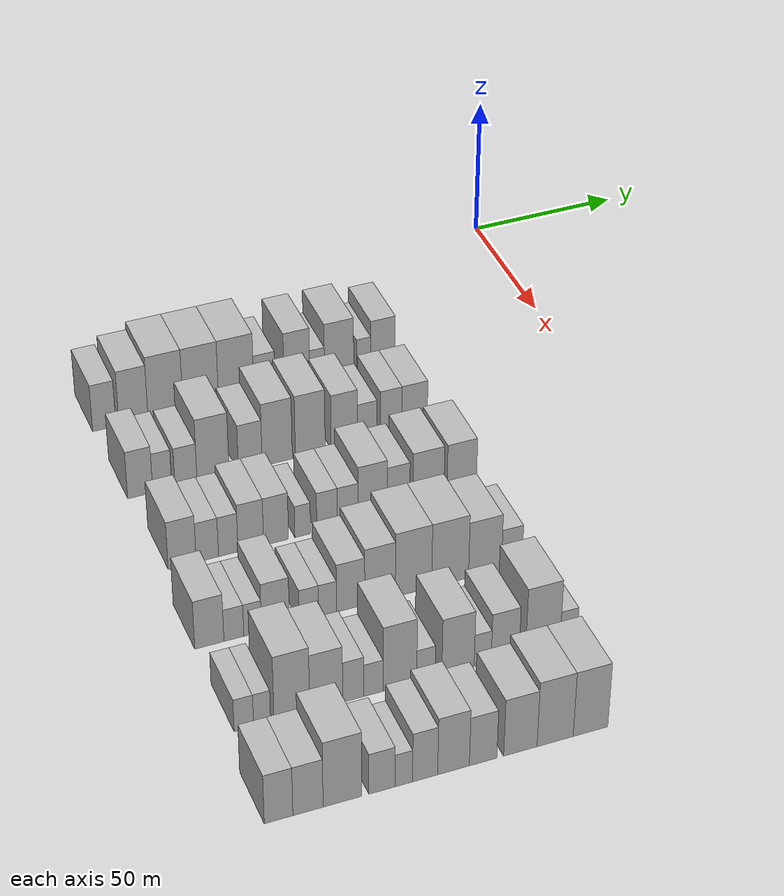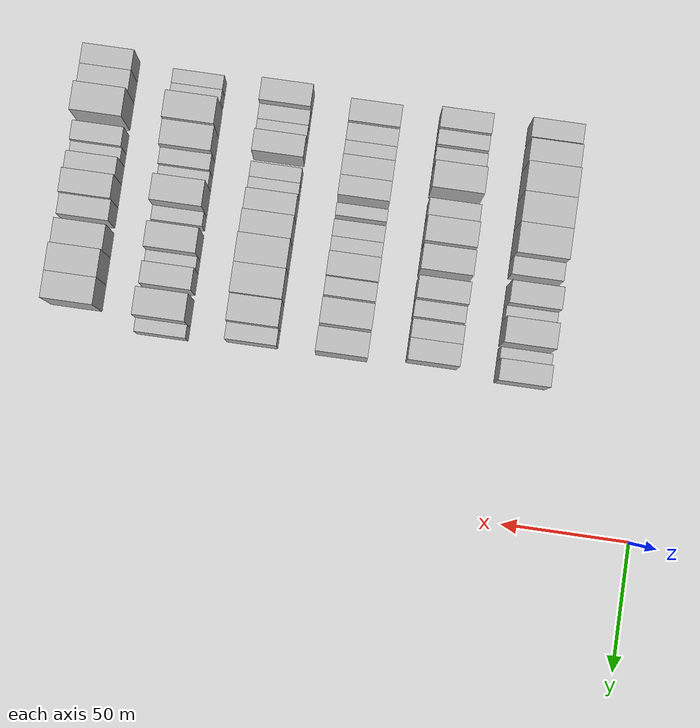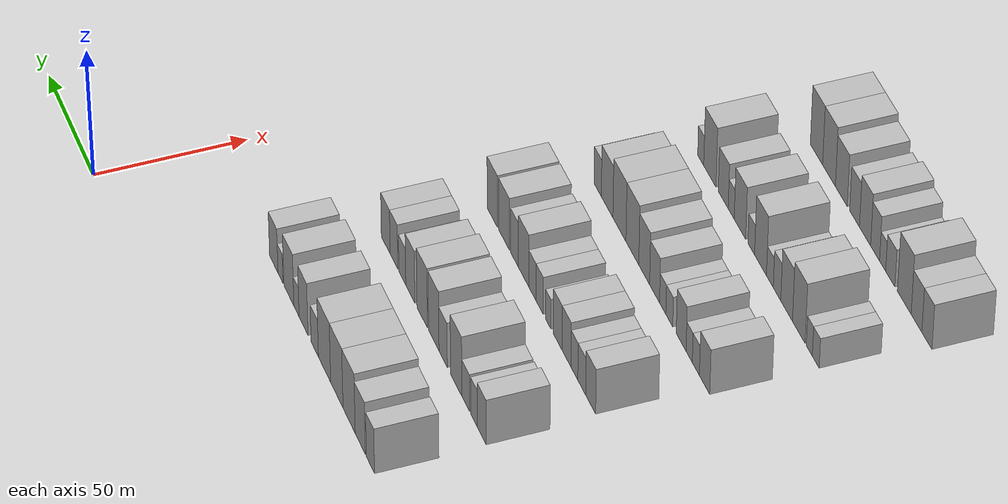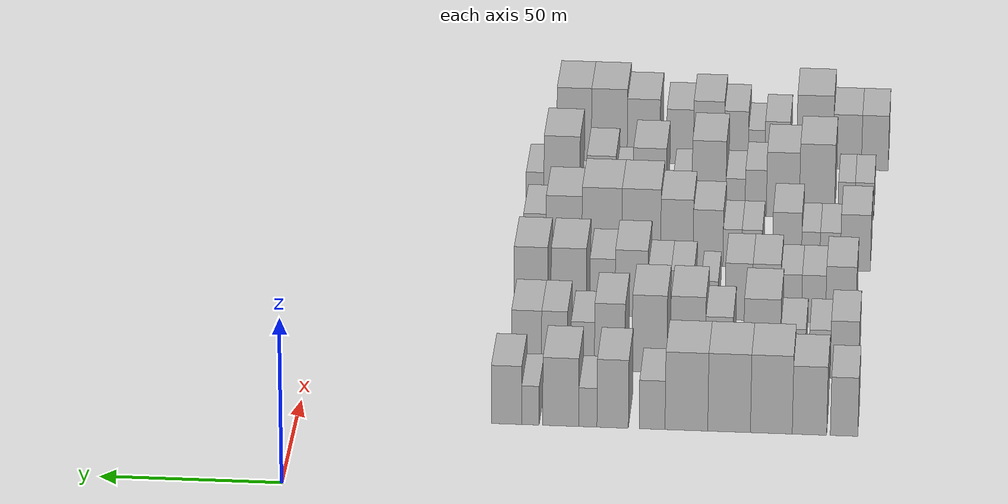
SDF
<sdf version="1.6">
 <world name="default">
  <model name="building_47">
   <static>1</static>
   <pose>50.0000 -151.7226 0 0.000000 0.000000 0.000000</pose>
   <link name="link">
    <pose>0 0 9.00 0 0 0</pose>
    <collision name="collision"><geometry><box><size>20.0000 7.5918 18.0000</size></box></geometry></collision>
    <visual name="visual">
     <cast_shadows>0</cast_shadows>
     <geometry><box><size>20.0000 7.5918 18.0000</size></box></geometry>
     <material>
      <script>
       <uri>model://HANNAS_wall/materials/scripts</uri>
       <uri>model://HANNAS_wall/materials/textures</uri>
       <name>vrc/HANNAS_wall</name>
      </script>
     </material>
    </visual>
   </link>
  </model>
  <model name="building_48">
   <static>1</static>
   <pose>50.0000 -142.1726 0 0.000000 0.000000 0.000000</pose>
   <link name="link">
    <pose>0 0 10.50 0 0 0</pose>
    <collision name="collision"><geometry><box><size>20.0000 9.5083 21.0000</size></box></geometry></collision>
    <visual name="visual">
     <cast_shadows>0</cast_shadows>
     <geometry><box><size>20.0000 9.5083 21.0000</size></box></geometry>
     <material>
      <script>
       <uri>model://HANNAS_wall/materials/scripts</uri>
       <uri>model://HANNAS_wall/materials/textures</uri>
       <name>vrc/HANNAS_wall</name>
      </script>
     </material>
    </visual>
   </link>
  </model>
  <model name="building_49">
   <static>1</static>
   <pose>50.0000 -131.6362 0 0.000000 0.000000 0.000000</pose>
   <link name="link">
    <pose>0 0 12.00 0 0 0</pose>
    <collision name="collision"><geometry><box><size>20.0000 11.5646 24.0000</size></box></geometry></collision>
    <visual name="visual">
     <cast_shadows>0</cast_shadows>
     <geometry><box><size>20.0000 11.5646 24.0000</size></box></geometry>
     <material>
      <script>
       <uri>model://HANNAS_wall/materials/scripts</uri>
       <uri>model://HANNAS_wall/materials/textures</uri>
       <name>vrc/HANNAS_wall</name>
      </script>
     </material>
    </visual>
   </link>
  </model>
  <model name="building_50">
   <static>1</static>
   <pose>50.0000 -119.9481 0 0.000000 0.000000 0.000000</pose>
   <link name="link">
    <pose>0 0 12.00 0 0 0</pose>
    <collision name="collision"><geometry><box><size>20.0000 11.8115 24.0000</size></box></geometry></collision>
    <visual name="visual">
     <cast_shadows>0</cast_shadows>
     <geometry><box><size>20.0000 11.8115 24.0000</size></box></geometry>
     <material>
      <script>
       <uri>model://HANNAS_wall/materials/scripts</uri>
       <uri>model://HANNAS_wall/materials/textures</uri>
       <name>vrc/HANNAS_wall</name>
      </script>
     </material>
    </visual>
   </link>
  </model>
  <model name="building_51">
   <static>1</static>
   <pose>50.0000 -108.1236 0 0.000000 0.000000 0.000000</pose>
   <link name="link">
    <pose>0 0 12.00 0 0 0</pose>
    <collision name="collision"><geometry><box><size>20.0000 11.8376 24.0000</size></box></geometry></collision>
    <visual name="visual">
     <cast_shadows>0</cast_shadows>
     <geometry><box><size>20.0000 11.8376 24.0000</size></box></geometry>
     <material>
      <script>
       <uri>model://HANNAS_wall/materials/scripts</uri>
       <uri>model://HANNAS_wall/materials/textures</uri>
       <name>vrc/HANNAS_wall</name>
      </script>
     </material>
    </visual>
   </link>
  </model>
  <model name="building_52">
   <static>1</static>
   <pose>50.0000 -98.6287 0 0.000000 0.000000 0.000000</pose>
   <link name="link">
    <pose>0 0 7.50 0 0 0</pose>
    <collision name="collision"><geometry><box><size>20.0000 7.1521 15.0000</size></box></geometry></collision>
    <visual name="visual">
     <cast_shadows>0</cast_shadows>
     <geometry><box><size>20.0000 7.1521 15.0000</size></box></geometry>
     <material>
      <script>
       <uri>model://HANNAS_wall/materials/scripts</uri>
       <uri>model://HANNAS_wall/materials/textures</uri>
       <name>vrc/HANNAS_wall</name>
      </script>
     </material>
    </visual>
   </link>
  </model>
  <model name="building_53">
   <static>1</static>
   <pose>50.0000 -87.6886 0 0.000000 0.000000 0.000000</pose>
   <link name="link">
    <pose>0 0 10.50 0 0 0</pose>
    <collision name="collision"><geometry><box><size>20.0000 8.7281 21.0000</size></box></geometry></collision>
    <visual name="visual">
     <cast_shadows>0</cast_shadows>
     <geometry><box><size>20.0000 8.7281 21.0000</size></box></geometry>
     <material>
      <script>
       <uri>model://HANNAS_wall/materials/scripts</uri>
       <uri>model://HANNAS_wall/materials/textures</uri>
       <name>vrc/HANNAS_wall</name>
      </script>
     </material>
    </visual>
   </link>
  </model>
  <model name="building_54">
   <static>1</static>
   <pose>50.0000 -80.7984 0 0.000000 0.000000 0.000000</pose>
   <link name="link">
    <pose>0 0 6.00 0 0 0</pose>
    <collision name="collision"><geometry><box><size>20.0000 5.0522 12.0000</size></box></geometry></collision>
    <visual name="visual">
     <cast_shadows>0</cast_shadows>
     <geometry><box><size>20.0000 5.0522 12.0000</size></box></geometry>
     <material>
      <script>
       <uri>model://HANNAS_wall/materials/scripts</uri>
       <uri>model://HANNAS_wall/materials/textures</uri>
       <name>vrc/HANNAS_wall</name>
      </script>
     </material>
    </visual>
   </link>
  </model>
  <model name="building_55">
   <static>1</static>
   <pose>50.0000 -73.2780 0 0.000000 0.000000 0.000000</pose>
   <link name="link">
    <pose>0 0 10.50 0 0 0</pose>
    <collision name="collision"><geometry><box><size>20.0000 9.9886 21.0000</size></box></geometry></collision>
    <visual name="visual">
     <cast_shadows>0</cast_shadows>
     <geometry><box><size>20.0000 9.9886 21.0000</size></box></geometry>
     <material>
      <script>
       <uri>model://HANNAS_wall/materials/scripts</uri>
       <uri>model://HANNAS_wall/materials/textures</uri>
       <name>vrc/HANNAS_wall</name>
      </script>
     </material>
    </visual>
   </link>
  </model>
  <model name="building_56">
   <static>1</static>
   <pose>50.0000 -64.8513 0 0.000000 0.000000 0.000000</pose>
   <link name="link">
    <pose>0 0 6.00 0 0 0</pose>
    <collision name="collision"><geometry><box><size>20.0000 4.8649 12.0000</size></box></geometry></collision>
    <visual name="visual">
     <cast_shadows>0</cast_shadows>
     <geometry><box><size>20.0000 4.8649 12.0000</size></box></geometry>
     <material>
      <script>
       <uri>model://HANNAS_wall/materials/scripts</uri>
       <uri>model://HANNAS_wall/materials/textures</uri>
       <name>vrc/HANNAS_wall</name>
      </script>
     </material>
    </visual>
   </link>
  </model>
  <model name="building_57">
   <static>1</static>
   <pose>50.0000 -58.1973 0 0.000000 0.000000 0.000000</pose>
   <link name="link">
    <pose>0 0 9.00 0 0 0</pose>
    <collision name="collision"><geometry><box><size>20.0000 8.4430 18.0000</size></box></geometry></collision>
    <visual name="visual">
     <cast_shadows>0</cast_shadows>
     <geometry><box><size>20.0000 8.4430 18.0000</size></box></geometry>
     <material>
      <script>
       <uri>model://HANNAS_wall/materials/scripts</uri>
       <uri>model://HANNAS_wall/materials/textures</uri>
       <name>vrc/HANNAS_wall</name>
      </script>
     </material>
    </visual>
   </link>
  </model>
  <model name="building_180">
   <static>1</static>
   <pose>85.0000 -150.8026 0 0.000000 0.000000 0.000000</pose>
   <link name="link">
    <pose>0 0 9.00 0 0 0</pose>
    <collision name="collision"><geometry><box><size>20.0000 7.9804 18.0000</size></box></geometry></collision>
    <visual name="visual">
     <cast_shadows>0</cast_shadows>
     <geometry><box><size>20.0000 7.9804 18.0000</size></box></geometry>
     <material>
      <script>
       <uri>model://HANNAS_wall/materials/scripts</uri>
       <uri>model://HANNAS_wall/materials/textures</uri>
       <name>vrc/HANNAS_wall</name>
      </script>
     </material>
    </visual>
   </link>
  </model>
  <model name="building_181">
   <static>1</static>
   <pose>85.0000 -143.7835 0 0.000000 0.000000 0.000000</pose>
   <link name="link">
    <pose>0 0 7.50 0 0 0</pose>
    <collision name="collision"><geometry><box><size>20.0000 6.0578 15.0000</size></box></geometry></collision>
    <visual name="visual">
     <cast_shadows>0</cast_shadows>
     <geometry><box><size>20.0000 6.0578 15.0000</size></box></geometry>
     <material>
      <script>
       <uri>model://HANNAS_wall/materials/scripts</uri>
       <uri>model://HANNAS_wall/materials/textures</uri>
       <name>vrc/HANNAS_wall</name>
      </script>
     </material>
    </visual>
   </link>
  </model>
  <model name="building_182">
   <static>1</static>
   <pose>85.0000 -136.2201 0 0.000000 0.000000 0.000000</pose>
   <link name="link">
    <pose>0 0 7.50 0 0 0</pose>
    <collision name="collision"><geometry><box><size>20.0000 7.0689 15.0000</size></box></geometry></collision>
    <visual name="visual">
     <cast_shadows>0</cast_shadows>
     <geometry><box><size>20.0000 7.0689 15.0000</size></box></geometry>
     <material>
      <script>
       <uri>model://HANNAS_wall/materials/scripts</uri>
       <uri>model://HANNAS_wall/materials/textures</uri>
       <name>vrc/HANNAS_wall</name>
      </script>
     </material>
    </visual>
   </link>
  </model>
  <model name="building_183">
   <static>1</static>
   <pose>85.0000 -127.5166 0 0.000000 0.000000 0.000000</pose>
   <link name="link">
    <pose>0 0 12.00 0 0 0</pose>
    <collision name="collision"><geometry><box><size>20.0000 10.3381 24.0000</size></box></geometry></collision>
    <visual name="visual">
     <cast_shadows>0</cast_shadows>
     <geometry><box><size>20.0000 10.3381 24.0000</size></box></geometry>
     <material>
      <script>
       <uri>model://HANNAS_wall/materials/scripts</uri>
       <uri>model://HANNAS_wall/materials/textures</uri>
       <name>vrc/HANNAS_wall</name>
      </script>
     </material>
    </visual>
   </link>
  </model>
  <model name="building_184">
   <static>1</static>
   <pose>85.0000 -115.4911 0 0.000000 0.000000 0.000000</pose>
   <link name="link">
    <pose>0 0 9.00 0 0 0</pose>
    <collision name="collision"><geometry><box><size>20.0000 7.7129 18.0000</size></box></geometry></collision>
    <visual name="visual">
     <cast_shadows>0</cast_shadows>
     <geometry><box><size>20.0000 7.7129 18.0000</size></box></geometry>
     <material>
      <script>
       <uri>model://HANNAS_wall/materials/scripts</uri>
       <uri>model://HANNAS_wall/materials/textures</uri>
       <name>vrc/HANNAS_wall</name>
      </script>
     </material>
    </visual>
   </link>
  </model>
  <model name="building_185">
   <static>1</static>
   <pose>85.0000 -106.7195 0 0.000000 0.000000 0.000000</pose>
   <link name="link">
    <pose>0 0 12.00 0 0 0</pose>
    <collision name="collision"><geometry><box><size>20.0000 9.8304 24.0000</size></box></geometry></collision>
    <visual name="visual">
     <cast_shadows>0</cast_shadows>
     <geometry><box><size>20.0000 9.8304 24.0000</size></box></geometry>
     <material>
      <script>
       <uri>model://HANNAS_wall/materials/scripts</uri>
       <uri>model://HANNAS_wall/materials/textures</uri>
       <name>vrc/HANNAS_wall</name>
      </script>
     </material>
    </visual>
   </link>
  </model>
  <model name="building_186">
   <static>1</static>
   <pose>85.0000 -95.9043 0 0.000000 0.000000 0.000000</pose>
   <link name="link">
    <pose>0 0 12.00 0 0 0</pose>
    <collision name="collision"><geometry><box><size>20.0000 9.8000 24.0000</size></box></geometry></collision>
    <visual name="visual">
     <cast_shadows>0</cast_shadows>
     <geometry><box><size>20.0000 9.8000 24.0000</size></box></geometry>
     <material>
      <script>
       <uri>model://HANNAS_wall/materials/scripts</uri>
       <uri>model://HANNAS_wall/materials/textures</uri>
       <name>vrc/HANNAS_wall</name>
      </script>
     </material>
    </visual>
   </link>
  </model>
  <model name="building_187">
   <static>1</static>
   <pose>85.0000 -84.6917 0 0.000000 0.000000 0.000000</pose>
   <link name="link">
    <pose>0 0 10.50 0 0 0</pose>
    <collision name="collision"><geometry><box><size>20.0000 8.6253 21.0000</size></box></geometry></collision>
    <visual name="visual">
     <cast_shadows>0</cast_shadows>
     <geometry><box><size>20.0000 8.6253 21.0000</size></box></geometry>
     <material>
      <script>
       <uri>model://HANNAS_wall/materials/scripts</uri>
       <uri>model://HANNAS_wall/materials/textures</uri>
       <name>vrc/HANNAS_wall</name>
      </script>
     </material>
    </visual>
   </link>
  </model>
  <model name="building_188">
   <static>1</static>
   <pose>85.0000 -77.0726 0 0.000000 0.000000 0.000000</pose>
   <link name="link">
    <pose>0 0 7.50 0 0 0</pose>
    <collision name="collision"><geometry><box><size>20.0000 6.6129 15.0000</size></box></geometry></collision>
    <visual name="visual">
     <cast_shadows>0</cast_shadows>
     <geometry><box><size>20.0000 6.6129 15.0000</size></box></geometry>
     <material>
      <script>
       <uri>model://HANNAS_wall/materials/scripts</uri>
       <uri>model://HANNAS_wall/materials/textures</uri>
       <name>vrc/HANNAS_wall</name>
      </script>
     </material>
    </visual>
   </link>
  </model>
  <model name="building_189">
   <static>1</static>
   <pose>85.0000 -69.1097 0 0.000000 0.000000 0.000000</pose>
   <link name="link">
    <pose>0 0 9.00 0 0 0</pose>
    <collision name="collision"><geometry><box><size>20.0000 7.3129 18.0000</size></box></geometry></collision>
    <visual name="visual">
     <cast_shadows>0</cast_shadows>
     <geometry><box><size>20.0000 7.3129 18.0000</size></box></geometry>
     <material>
      <script>
       <uri>model://HANNAS_wall/materials/scripts</uri>
       <uri>model://HANNAS_wall/materials/textures</uri>
       <name>vrc/HANNAS_wall</name>
      </script>
     </material>
    </visual>
   </link>
  </model>
  <model name="building_190">
   <static>1</static>
   <pose>85.0000 -61.2022 0 0.000000 0.000000 0.000000</pose>
   <link name="link">
    <pose>0 0 9.00 0 0 0</pose>
    <collision name="collision"><geometry><box><size>20.0000 8.5022 18.0000</size></box></geometry></collision>
    <visual name="visual">
     <cast_shadows>0</cast_shadows>
     <geometry><box><size>20.0000 8.5022 18.0000</size></box></geometry>
     <material>
      <script>
       <uri>model://HANNAS_wall/materials/scripts</uri>
       <uri>model://HANNAS_wall/materials/textures</uri>
       <name>vrc/HANNAS_wall</name>
      </script>
     </material>
    </visual>
   </link>
  </model>
  <model name="building_313">
   <static>1</static>
   <pose>120.0000 -148.7466 0 0.000000 0.000000 0.000000</pose>
   <link name="link">
    <pose>0 0 9.00 0 0 0</pose>
    <collision name="collision"><geometry><box><size>20.0000 8.6622 18.0000</size></box></geometry></collision>
    <visual name="visual">
     <cast_shadows>0</cast_shadows>
     <geometry><box><size>20.0000 8.6622 18.0000</size></box></geometry>
     <material>
      <script>
       <uri>model://HANNAS_wall/materials/scripts</uri>
       <uri>model://HANNAS_wall/materials/textures</uri>
       <name>vrc/HANNAS_wall</name>
      </script>
     </material>
    </visual>
   </link>
  </model>
  <model name="building_314">
   <static>1</static>
   <pose>120.0000 -140.9624 0 0.000000 0.000000 0.000000</pose>
   <link name="link">
    <pose>0 0 7.50 0 0 0</pose>
    <collision name="collision"><geometry><box><size>20.0000 6.9063 15.0000</size></box></geometry></collision>
    <visual name="visual">
     <cast_shadows>0</cast_shadows>
     <geometry><box><size>20.0000 6.9063 15.0000</size></box></geometry>
     <material>
      <script>
       <uri>model://HANNAS_wall/materials/scripts</uri>
       <uri>model://HANNAS_wall/materials/textures</uri>
       <name>vrc/HANNAS_wall</name>
      </script>
     </material>
    </visual>
   </link>
  </model>
  <model name="building_315">
   <static>1</static>
   <pose>120.0000 -134.4715 0 0.000000 0.000000 0.000000</pose>
   <link name="link">
    <pose>0 0 7.50 0 0 0</pose>
    <collision name="collision"><geometry><box><size>20.0000 6.0755 15.0000</size></box></geometry></collision>
    <visual name="visual">
     <cast_shadows>0</cast_shadows>
     <geometry><box><size>20.0000 6.0755 15.0000</size></box></geometry>
     <material>
      <script>
       <uri>model://HANNAS_wall/materials/scripts</uri>
       <uri>model://HANNAS_wall/materials/textures</uri>
       <name>vrc/HANNAS_wall</name>
      </script>
     </material>
    </visual>
   </link>
  </model>
  <model name="building_316">
   <static>1</static>
   <pose>120.0000 -127.4224 0 0.000000 0.000000 0.000000</pose>
   <link name="link">
    <pose>0 0 9.00 0 0 0</pose>
    <collision name="collision"><geometry><box><size>20.0000 8.0227 18.0000</size></box></geometry></collision>
    <visual name="visual">
     <cast_shadows>0</cast_shadows>
     <geometry><box><size>20.0000 8.0227 18.0000</size></box></geometry>
     <material>
      <script>
       <uri>model://HANNAS_wall/materials/scripts</uri>
       <uri>model://HANNAS_wall/materials/textures</uri>
       <name>vrc/HANNAS_wall</name>
      </script>
     </material>
    </visual>
   </link>
  </model>
  <model name="building_317">
   <static>1</static>
   <pose>120.0000 -119.4923 0 0.000000 0.000000 0.000000</pose>
   <link name="link">
    <pose>0 0 9.00 0 0 0</pose>
    <collision name="collision"><geometry><box><size>20.0000 7.8375 18.0000</size></box></geometry></collision>
    <visual name="visual">
     <cast_shadows>0</cast_shadows>
     <geometry><box><size>20.0000 7.8375 18.0000</size></box></geometry>
     <material>
      <script>
       <uri>model://HANNAS_wall/materials/scripts</uri>
       <uri>model://HANNAS_wall/materials/textures</uri>
       <name>vrc/HANNAS_wall</name>
      </script>
     </material>
    </visual>
   </link>
  </model>
  <model name="building_318">
   <static>1</static>
   <pose>120.0000 -111.0897 0 0.000000 0.000000 0.000000</pose>
   <link name="link">
    <pose>0 0 6.00 0 0 0</pose>
    <collision name="collision"><geometry><box><size>20.0000 4.9676 12.0000</size></box></geometry></collision>
    <visual name="visual">
     <cast_shadows>0</cast_shadows>
     <geometry><box><size>20.0000 4.9676 12.0000</size></box></geometry>
     <material>
      <script>
       <uri>model://HANNAS_wall/materials/scripts</uri>
       <uri>model://HANNAS_wall/materials/textures</uri>
       <name>vrc/HANNAS_wall</name>
      </script>
     </material>
    </visual>
   </link>
  </model>
  <model name="building_319">
   <static>1</static>
   <pose>120.0000 -103.3149 0 0.000000 0.000000 0.000000</pose>
   <link name="link">
    <pose>0 0 7.50 0 0 0</pose>
    <collision name="collision"><geometry><box><size>20.0000 6.5821 15.0000</size></box></geometry></collision>
    <visual name="visual">
     <cast_shadows>0</cast_shadows>
     <geometry><box><size>20.0000 6.5821 15.0000</size></box></geometry>
     <material>
      <script>
       <uri>model://HANNAS_wall/materials/scripts</uri>
       <uri>model://HANNAS_wall/materials/textures</uri>
       <name>vrc/HANNAS_wall</name>
      </script>
     </material>
    </visual>
   </link>
  </model>
  <model name="building_320">
   <static>1</static>
   <pose>120.0000 -96.7387 0 0.000000 0.000000 0.000000</pose>
   <link name="link">
    <pose>0 0 7.50 0 0 0</pose>
    <collision name="collision"><geometry><box><size>20.0000 6.5704 15.0000</size></box></geometry></collision>
    <visual name="visual">
     <cast_shadows>0</cast_shadows>
     <geometry><box><size>20.0000 6.5704 15.0000</size></box></geometry>
     <material>
      <script>
       <uri>model://HANNAS_wall/materials/scripts</uri>
       <uri>model://HANNAS_wall/materials/textures</uri>
       <name>vrc/HANNAS_wall</name>
      </script>
     </material>
    </visual>
   </link>
  </model>
  <model name="building_321">
   <static>1</static>
   <pose>120.0000 -88.7638 0 0.000000 0.000000 0.000000</pose>
   <link name="link">
    <pose>0 0 10.50 0 0 0</pose>
    <collision name="collision"><geometry><box><size>20.0000 9.3794 21.0000</size></box></geometry></collision>
    <visual name="visual">
     <cast_shadows>0</cast_shadows>
     <geometry><box><size>20.0000 9.3794 21.0000</size></box></geometry>
     <material>
      <script>
       <uri>model://HANNAS_wall/materials/scripts</uri>
       <uri>model://HANNAS_wall/materials/textures</uri>
       <name>vrc/HANNAS_wall</name>
      </script>
     </material>
    </visual>
   </link>
  </model>
  <model name="building_322">
   <static>1</static>
   <pose>120.0000 -80.4384 0 0.000000 0.000000 0.000000</pose>
   <link name="link">
    <pose>0 0 9.00 0 0 0</pose>
    <collision name="collision"><geometry><box><size>20.0000 7.2715 18.0000</size></box></geometry></collision>
    <visual name="visual">
     <cast_shadows>0</cast_shadows>
     <geometry><box><size>20.0000 7.2715 18.0000</size></box></geometry>
     <material>
      <script>
       <uri>model://HANNAS_wall/materials/scripts</uri>
       <uri>model://HANNAS_wall/materials/textures</uri>
       <name>vrc/HANNAS_wall</name>
      </script>
     </material>
    </visual>
   </link>
  </model>
  <model name="building_323">
   <static>1</static>
   <pose>120.0000 -70.7471 0 0.000000 0.000000 0.000000</pose>
   <link name="link">
    <pose>0 0 10.50 0 0 0</pose>
    <collision name="collision"><geometry><box><size>20.0000 10.1110 21.0000</size></box></geometry></collision>
    <visual name="visual">
     <cast_shadows>0</cast_shadows>
     <geometry><box><size>20.0000 10.1110 21.0000</size></box></geometry>
     <material>
      <script>
       <uri>model://HANNAS_wall/materials/scripts</uri>
       <uri>model://HANNAS_wall/materials/textures</uri>
       <name>vrc/HANNAS_wall</name>
      </script>
     </material>
    </visual>
   </link>
  </model>
  <model name="building_324">
   <static>1</static>
   <pose>120.0000 -59.8851 0 0.000000 0.000000 0.000000</pose>
   <link name="link">
    <pose>0 0 10.50 0 0 0</pose>
    <collision name="collision"><geometry><box><size>20.0000 9.6130 21.0000</size></box></geometry></collision>
    <visual name="visual">
     <cast_shadows>0</cast_shadows>
     <geometry><box><size>20.0000 9.6130 21.0000</size></box></geometry>
     <material>
      <script>
       <uri>model://HANNAS_wall/materials/scripts</uri>
       <uri>model://HANNAS_wall/materials/textures</uri>
       <name>vrc/HANNAS_wall</name>
      </script>
     </material>
    </visual>
   </link>
  </model>
  <model name="building_440">
   <static>1</static>
   <pose>155.0000 -151.9660 0 0.000000 0.000000 0.000000</pose>
   <link name="link">
    <pose>0 0 9.00 0 0 0</pose>
    <collision name="collision"><geometry><box><size>20.0000 8.7335 18.0000</size></box></geometry></collision>
    <visual name="visual">
     <cast_shadows>0</cast_shadows>
     <geometry><box><size>20.0000 8.7335 18.0000</size></box></geometry>
     <material>
      <script>
       <uri>model://HANNAS_wall/materials/scripts</uri>
       <uri>model://HANNAS_wall/materials/textures</uri>
       <name>vrc/HANNAS_wall</name>
      </script>
     </material>
    </visual>
   </link>
  </model>
  <model name="building_441">
   <static>1</static>
   <pose>155.0000 -144.6130 0 0.000000 0.000000 0.000000</pose>
   <link name="link">
    <pose>0 0 6.00 0 0 0</pose>
    <collision name="collision"><geometry><box><size>20.0000 5.9723 12.0000</size></box></geometry></collision>
    <visual name="visual">
     <cast_shadows>0</cast_shadows>
     <geometry><box><size>20.0000 5.9723 12.0000</size></box></geometry>
     <material>
      <script>
       <uri>model://HANNAS_wall/materials/scripts</uri>
       <uri>model://HANNAS_wall/materials/textures</uri>
       <name>vrc/HANNAS_wall</name>
      </script>
     </material>
    </visual>
   </link>
  </model>
  <model name="building_442">
   <static>1</static>
   <pose>155.0000 -138.9491 0 0.000000 0.000000 0.000000</pose>
   <link name="link">
    <pose>0 0 6.00 0 0 0</pose>
    <collision name="collision"><geometry><box><size>20.0000 5.3557 12.0000</size></box></geometry></collision>
    <visual name="visual">
     <cast_shadows>0</cast_shadows>
     <geometry><box><size>20.0000 5.3557 12.0000</size></box></geometry>
     <material>
      <script>
       <uri>model://HANNAS_wall/materials/scripts</uri>
       <uri>model://HANNAS_wall/materials/textures</uri>
       <name>vrc/HANNAS_wall</name>
      </script>
     </material>
    </visual>
   </link>
  </model>
  <model name="building_443">
   <static>1</static>
   <pose>155.0000 -132.0461 0 0.000000 0.000000 0.000000</pose>
   <link name="link">
    <pose>0 0 9.00 0 0 0</pose>
    <collision name="collision"><geometry><box><size>20.0000 8.4503 18.0000</size></box></geometry></collision>
    <visual name="visual">
     <cast_shadows>0</cast_shadows>
     <geometry><box><size>20.0000 8.4503 18.0000</size></box></geometry>
     <material>
      <script>
       <uri>model://HANNAS_wall/materials/scripts</uri>
       <uri>model://HANNAS_wall/materials/textures</uri>
       <name>vrc/HANNAS_wall</name>
      </script>
     </material>
    </visual>
   </link>
  </model>
  <model name="building_444">
   <static>1</static>
   <pose>155.0000 -121.8420 0 0.000000 0.000000 0.000000</pose>
   <link name="link">
    <pose>0 0 6.00 0 0 0</pose>
    <collision name="collision"><geometry><box><size>20.0000 5.9577 12.0000</size></box></geometry></collision>
    <visual name="visual">
     <cast_shadows>0</cast_shadows>
     <geometry><box><size>20.0000 5.9577 12.0000</size></box></geometry>
     <material>
      <script>
       <uri>model://HANNAS_wall/materials/scripts</uri>
       <uri>model://HANNAS_wall/materials/textures</uri>
       <name>vrc/HANNAS_wall</name>
      </script>
     </material>
    </visual>
   </link>
  </model>
  <model name="building_445">
   <static>1</static>
   <pose>155.0000 -116.1444 0 0.000000 0.000000 0.000000</pose>
   <link name="link">
    <pose>0 0 6.00 0 0 0</pose>
    <collision name="collision"><geometry><box><size>20.0000 5.4375 12.0000</size></box></geometry></collision>
    <visual name="visual">
     <cast_shadows>0</cast_shadows>
     <geometry><box><size>20.0000 5.4375 12.0000</size></box></geometry>
     <material>
      <script>
       <uri>model://HANNAS_wall/materials/scripts</uri>
       <uri>model://HANNAS_wall/materials/textures</uri>
       <name>vrc/HANNAS_wall</name>
      </script>
     </material>
    </visual>
   </link>
  </model>
  <model name="building_446">
   <static>1</static>
   <pose>155.0000 -109.0697 0 0.000000 0.000000 0.000000</pose>
   <link name="link">
    <pose>0 0 9.00 0 0 0</pose>
    <collision name="collision"><geometry><box><size>20.0000 8.7119 18.0000</size></box></geometry></collision>
    <visual name="visual">
     <cast_shadows>0</cast_shadows>
     <geometry><box><size>20.0000 8.7119 18.0000</size></box></geometry>
     <material>
      <script>
       <uri>model://HANNAS_wall/materials/scripts</uri>
       <uri>model://HANNAS_wall/materials/textures</uri>
       <name>vrc/HANNAS_wall</name>
      </script>
     </material>
    </visual>
   </link>
  </model>
  <model name="building_447">
   <static>1</static>
   <pose>155.0000 -99.9733 0 0.000000 0.000000 0.000000</pose>
   <link name="link">
    <pose>0 0 10.50 0 0 0</pose>
    <collision name="collision"><geometry><box><size>20.0000 9.4808 21.0000</size></box></geometry></collision>
    <visual name="visual">
     <cast_shadows>0</cast_shadows>
     <geometry><box><size>20.0000 9.4808 21.0000</size></box></geometry>
     <material>
      <script>
       <uri>model://HANNAS_wall/materials/scripts</uri>
       <uri>model://HANNAS_wall/materials/textures</uri>
       <name>vrc/HANNAS_wall</name>
      </script>
     </material>
    </visual>
   </link>
  </model>
  <model name="building_448">
   <static>1</static>
   <pose>155.0000 -89.5565 0 0.000000 0.000000 0.000000</pose>
   <link name="link">
    <pose>0 0 12.00 0 0 0</pose>
    <collision name="collision"><geometry><box><size>20.0000 11.3528 24.0000</size></box></geometry></collision>
    <visual name="visual">
     <cast_shadows>0</cast_shadows>
     <geometry><box><size>20.0000 11.3528 24.0000</size></box></geometry>
     <material>
      <script>
       <uri>model://HANNAS_wall/materials/scripts</uri>
       <uri>model://HANNAS_wall/materials/textures</uri>
       <name>vrc/HANNAS_wall</name>
      </script>
     </material>
    </visual>
   </link>
  </model>
  <model name="building_449">
   <static>1</static>
   <pose>155.0000 -78.0651 0 0.000000 0.000000 0.000000</pose>
   <link name="link">
    <pose>0 0 12.00 0 0 0</pose>
    <collision name="collision"><geometry><box><size>20.0000 11.6300 24.0000</size></box></geometry></collision>
    <visual name="visual">
     <cast_shadows>0</cast_shadows>
     <geometry><box><size>20.0000 11.6300 24.0000</size></box></geometry>
     <material>
      <script>
       <uri>model://HANNAS_wall/materials/scripts</uri>
       <uri>model://HANNAS_wall/materials/textures</uri>
       <name>vrc/HANNAS_wall</name>
      </script>
     </material>
    </visual>
   </link>
  </model>
  <model name="building_450">
   <static>1</static>
   <pose>155.0000 -67.0281 0 0.000000 0.000000 0.000000</pose>
   <link name="link">
    <pose>0 0 10.50 0 0 0</pose>
    <collision name="collision"><geometry><box><size>20.0000 10.4440 21.0000</size></box></geometry></collision>
    <visual name="visual">
     <cast_shadows>0</cast_shadows>
     <geometry><box><size>20.0000 10.4440 21.0000</size></box></geometry>
     <material>
      <script>
       <uri>model://HANNAS_wall/materials/scripts</uri>
       <uri>model://HANNAS_wall/materials/textures</uri>
       <name>vrc/HANNAS_wall</name>
      </script>
     </material>
    </visual>
   </link>
  </model>
  <model name="building_451">
   <static>1</static>
   <pose>155.0000 -58.4953 0 0.000000 0.000000 0.000000</pose>
   <link name="link">
    <pose>0 0 7.50 0 0 0</pose>
    <collision name="collision"><geometry><box><size>20.0000 6.6218 15.0000</size></box></geometry></collision>
    <visual name="visual">
     <cast_shadows>0</cast_shadows>
     <geometry><box><size>20.0000 6.6218 15.0000</size></box></geometry>
     <material>
      <script>
       <uri>model://HANNAS_wall/materials/scripts</uri>
       <uri>model://HANNAS_wall/materials/textures</uri>
       <name>vrc/HANNAS_wall</name>
      </script>
     </material>
    </visual>
   </link>
  </model>
  <model name="building_564">
   <static>1</static>
   <pose>190.0000 -153.6237 0 0.000000 0.000000 0.000000</pose>
   <link name="link">
    <pose>0 0 6.00 0 0 0</pose>
    <collision name="collision"><geometry><box><size>20.0000 5.6325 12.0000</size></box></geometry></collision>
    <visual name="visual">
     <cast_shadows>0</cast_shadows>
     <geometry><box><size>20.0000 5.6325 12.0000</size></box></geometry>
     <material>
      <script>
       <uri>model://HANNAS_wall/materials/scripts</uri>
       <uri>model://HANNAS_wall/materials/textures</uri>
       <name>vrc/HANNAS_wall</name>
      </script>
     </material>
    </visual>
   </link>
  </model>
  <model name="building_565">
   <static>1</static>
   <pose>190.0000 -148.3350 0 0.000000 0.000000 0.000000</pose>
   <link name="link">
    <pose>0 0 6.00 0 0 0</pose>
    <collision name="collision"><geometry><box><size>20.0000 4.9449 12.0000</size></box></geometry></collision>
    <visual name="visual">
     <cast_shadows>0</cast_shadows>
     <geometry><box><size>20.0000 4.9449 12.0000</size></box></geometry>
     <material>
      <script>
       <uri>model://HANNAS_wall/materials/scripts</uri>
       <uri>model://HANNAS_wall/materials/textures</uri>
       <name>vrc/HANNAS_wall</name>
      </script>
     </material>
    </visual>
   </link>
  </model>
  <model name="building_566">
   <static>1</static>
   <pose>190.0000 -139.6506 0 0.000000 0.000000 0.000000</pose>
   <link name="link">
    <pose>0 0 12.00 0 0 0</pose>
    <collision name="collision"><geometry><box><size>20.0000 10.4239 24.0000</size></box></geometry></collision>
    <visual name="visual">
     <cast_shadows>0</cast_shadows>
     <geometry><box><size>20.0000 10.4239 24.0000</size></box></geometry>
     <material>
      <script>
       <uri>model://HANNAS_wall/materials/scripts</uri>
       <uri>model://HANNAS_wall/materials/textures</uri>
       <name>vrc/HANNAS_wall</name>
      </script>
     </material>
    </visual>
   </link>
  </model>
  <model name="building_567">
   <static>1</static>
   <pose>190.0000 -129.5628 0 0.000000 0.000000 0.000000</pose>
   <link name="link">
    <pose>0 0 10.50 0 0 0</pose>
    <collision name="collision"><geometry><box><size>20.0000 9.7516 21.0000</size></box></geometry></collision>
    <visual name="visual">
     <cast_shadows>0</cast_shadows>
     <geometry><box><size>20.0000 9.7516 21.0000</size></box></geometry>
     <material>
      <script>
       <uri>model://HANNAS_wall/materials/scripts</uri>
       <uri>model://HANNAS_wall/materials/textures</uri>
       <name>vrc/HANNAS_wall</name>
      </script>
     </material>
    </visual>
   </link>
  </model>
  <model name="building_568">
   <static>1</static>
   <pose>190.0000 -121.5324 0 0.000000 0.000000 0.000000</pose>
   <link name="link">
    <pose>0 0 7.50 0 0 0</pose>
    <collision name="collision"><geometry><box><size>20.0000 6.3091 15.0000</size></box></geometry></collision>
    <visual name="visual">
     <cast_shadows>0</cast_shadows>
     <geometry><box><size>20.0000 6.3091 15.0000</size></box></geometry>
     <material>
      <script>
       <uri>model://HANNAS_wall/materials/scripts</uri>
       <uri>model://HANNAS_wall/materials/textures</uri>
       <name>vrc/HANNAS_wall</name>
      </script>
     </material>
    </visual>
   </link>
  </model>
  <model name="building_569">
   <static>1</static>
   <pose>190.0000 -115.5256 0 0.000000 0.000000 0.000000</pose>
   <link name="link">
    <pose>0 0 6.00 0 0 0</pose>
    <collision name="collision"><geometry><box><size>20.0000 5.7044 12.0000</size></box></geometry></collision>
    <visual name="visual">
     <cast_shadows>0</cast_shadows>
     <geometry><box><size>20.0000 5.7044 12.0000</size></box></geometry>
     <material>
      <script>
       <uri>model://HANNAS_wall/materials/scripts</uri>
       <uri>model://HANNAS_wall/materials/textures</uri>
       <name>vrc/HANNAS_wall</name>
      </script>
     </material>
    </visual>
   </link>
  </model>
  <model name="building_570">
   <static>1</static>
   <pose>190.0000 -107.6391 0 0.000000 0.000000 0.000000</pose>
   <link name="link">
    <pose>0 0 12.00 0 0 0</pose>
    <collision name="collision"><geometry><box><size>20.0000 10.0686 24.0000</size></box></geometry></collision>
    <visual name="visual">
     <cast_shadows>0</cast_shadows>
     <geometry><box><size>20.0000 10.0686 24.0000</size></box></geometry>
     <material>
      <script>
       <uri>model://HANNAS_wall/materials/scripts</uri>
       <uri>model://HANNAS_wall/materials/textures</uri>
       <name>vrc/HANNAS_wall</name>
      </script>
     </material>
    </visual>
   </link>
  </model>
  <model name="building_571">
   <static>1</static>
   <pose>190.0000 -99.8068 0 0.000000 0.000000 0.000000</pose>
   <link name="link">
    <pose>0 0 6.00 0 0 0</pose>
    <collision name="collision"><geometry><box><size>20.0000 5.5961 12.0000</size></box></geometry></collision>
    <visual name="visual">
     <cast_shadows>0</cast_shadows>
     <geometry><box><size>20.0000 5.5961 12.0000</size></box></geometry>
     <material>
      <script>
       <uri>model://HANNAS_wall/materials/scripts</uri>
       <uri>model://HANNAS_wall/materials/textures</uri>
       <name>vrc/HANNAS_wall</name>
      </script>
     </material>
    </visual>
   </link>
  </model>
  <model name="building_572">
   <static>1</static>
   <pose>190.0000 -90.0910 0 0.000000 0.000000 0.000000</pose>
   <link name="link">
    <pose>0 0 10.50 0 0 0</pose>
    <collision name="collision"><geometry><box><size>20.0000 9.8354 21.0000</size></box></geometry></collision>
    <visual name="visual">
     <cast_shadows>0</cast_shadows>
     <geometry><box><size>20.0000 9.8354 21.0000</size></box></geometry>
     <material>
      <script>
       <uri>model://HANNAS_wall/materials/scripts</uri>
       <uri>model://HANNAS_wall/materials/textures</uri>
       <name>vrc/HANNAS_wall</name>
      </script>
     </material>
    </visual>
   </link>
  </model>
  <model name="building_573">
   <static>1</static>
   <pose>190.0000 -82.5906 0 0.000000 0.000000 0.000000</pose>
   <link name="link">
    <pose>0 0 6.00 0 0 0</pose>
    <collision name="collision"><geometry><box><size>20.0000 5.1654 12.0000</size></box></geometry></collision>
    <visual name="visual">
     <cast_shadows>0</cast_shadows>
     <geometry><box><size>20.0000 5.1654 12.0000</size></box></geometry>
     <material>
      <script>
       <uri>model://HANNAS_wall/materials/scripts</uri>
       <uri>model://HANNAS_wall/materials/textures</uri>
       <name>vrc/HANNAS_wall</name>
      </script>
     </material>
    </visual>
   </link>
  </model>
  <model name="building_574">
   <static>1</static>
   <pose>190.0000 -75.6981 0 0.000000 0.000000 0.000000</pose>
   <link name="link">
    <pose>0 0 9.00 0 0 0</pose>
    <collision name="collision"><geometry><box><size>20.0000 8.6197 18.0000</size></box></geometry></collision>
    <visual name="visual">
     <cast_shadows>0</cast_shadows>
     <geometry><box><size>20.0000 8.6197 18.0000</size></box></geometry>
     <material>
      <script>
       <uri>model://HANNAS_wall/materials/scripts</uri>
       <uri>model://HANNAS_wall/materials/textures</uri>
       <name>vrc/HANNAS_wall</name>
      </script>
     </material>
    </visual>
   </link>
  </model>
  <model name="building_575">
   <static>1</static>
   <pose>190.0000 -64.0357 0 0.000000 0.000000 0.000000</pose>
   <link name="link">
    <pose>0 0 12.00 0 0 0</pose>
    <collision name="collision"><geometry><box><size>20.0000 10.7051 24.0000</size></box></geometry></collision>
    <visual name="visual">
     <cast_shadows>0</cast_shadows>
     <geometry><box><size>20.0000 10.7051 24.0000</size></box></geometry>
     <material>
      <script>
       <uri>model://HANNAS_wall/materials/scripts</uri>
       <uri>model://HANNAS_wall/materials/textures</uri>
       <name>vrc/HANNAS_wall</name>
      </script>
     </material>
    </visual>
   </link>
  </model>
  <model name="building_576">
   <static>1</static>
   <pose>190.0000 -56.0357 0 0.000000 0.000000 0.000000</pose>
   <link name="link">
    <pose>0 0 6.00 0 0 0</pose>
    <collision name="collision"><geometry><box><size>20.0000 5.2951 12.0000</size></box></geometry></collision>
    <visual name="visual">
     <cast_shadows>0</cast_shadows>
     <geometry><box><size>20.0000 5.2951 12.0000</size></box></geometry>
     <material>
      <script>
       <uri>model://HANNAS_wall/materials/scripts</uri>
       <uri>model://HANNAS_wall/materials/textures</uri>
       <name>vrc/HANNAS_wall</name>
      </script>
     </material>
    </visual>
   </link>
  </model>
  <model name="building_690">
   <static>1</static>
   <pose>225.0000 -155.9347 0 0.000000 0.000000 0.000000</pose>
   <link name="link">
    <pose>0 0 9.00 0 0 0</pose>
    <collision name="collision"><geometry><box><size>20.0000 8.0259 18.0000</size></box></geometry></collision>
    <visual name="visual">
     <cast_shadows>0</cast_shadows>
     <geometry><box><size>20.0000 8.0259 18.0000</size></box></geometry>
     <material>
      <script>
       <uri>model://HANNAS_wall/materials/scripts</uri>
       <uri>model://HANNAS_wall/materials/textures</uri>
       <name>vrc/HANNAS_wall</name>
      </script>
     </material>
    </visual>
   </link>
  </model>
  <model name="building_691">
   <static>1</static>
   <pose>225.0000 -147.6589 0 0.000000 0.000000 0.000000</pose>
   <link name="link">
    <pose>0 0 9.00 0 0 0</pose>
    <collision name="collision"><geometry><box><size>20.0000 8.5256 18.0000</size></box></geometry></collision>
    <visual name="visual">
     <cast_shadows>0</cast_shadows>
     <geometry><box><size>20.0000 8.5256 18.0000</size></box></geometry>
     <material>
      <script>
       <uri>model://HANNAS_wall/materials/scripts</uri>
       <uri>model://HANNAS_wall/materials/textures</uri>
       <name>vrc/HANNAS_wall</name>
      </script>
     </material>
    </visual>
   </link>
  </model>
  <model name="building_692">
   <static>1</static>
   <pose>225.0000 -137.8812 0 0.000000 0.000000 0.000000</pose>
   <link name="link">
    <pose>0 0 12.00 0 0 0</pose>
    <collision name="collision"><geometry><box><size>20.0000 11.0298 24.0000</size></box></geometry></collision>
    <visual name="visual">
     <cast_shadows>0</cast_shadows>
     <geometry><box><size>20.0000 11.0298 24.0000</size></box></geometry>
     <material>
      <script>
       <uri>model://HANNAS_wall/materials/scripts</uri>
       <uri>model://HANNAS_wall/materials/textures</uri>
       <name>vrc/HANNAS_wall</name>
      </script>
     </material>
    </visual>
   </link>
  </model>
  <model name="building_693">
   <static>1</static>
   <pose>225.0000 -126.6186 0 0.000000 0.000000 0.000000</pose>
   <link name="link">
    <pose>0 0 7.50 0 0 0</pose>
    <collision name="collision"><geometry><box><size>20.0000 7.4952 15.0000</size></box></geometry></collision>
    <visual name="visual">
     <cast_shadows>0</cast_shadows>
     <geometry><box><size>20.0000 7.4952 15.0000</size></box></geometry>
     <material>
      <script>
       <uri>model://HANNAS_wall/materials/scripts</uri>
       <uri>model://HANNAS_wall/materials/textures</uri>
       <name>vrc/HANNAS_wall</name>
      </script>
     </material>
    </visual>
   </link>
  </model>
  <model name="building_694">
   <static>1</static>
   <pose>225.0000 -120.3599 0 0.000000 0.000000 0.000000</pose>
   <link name="link">
    <pose>0 0 6.00 0 0 0</pose>
    <collision name="collision"><geometry><box><size>20.0000 5.0224 12.0000</size></box></geometry></collision>
    <visual name="visual">
     <cast_shadows>0</cast_shadows>
     <geometry><box><size>20.0000 5.0224 12.0000</size></box></geometry>
     <material>
      <script>
       <uri>model://HANNAS_wall/materials/scripts</uri>
       <uri>model://HANNAS_wall/materials/textures</uri>
       <name>vrc/HANNAS_wall</name>
      </script>
     </material>
    </visual>
   </link>
  </model>
  <model name="building_695">
   <static>1</static>
   <pose>225.0000 -114.2030 0 0.000000 0.000000 0.000000</pose>
   <link name="link">
    <pose>0 0 9.00 0 0 0</pose>
    <collision name="collision"><geometry><box><size>20.0000 7.2915 18.0000</size></box></geometry></collision>
    <visual name="visual">
     <cast_shadows>0</cast_shadows>
     <geometry><box><size>20.0000 7.2915 18.0000</size></box></geometry>
     <material>
      <script>
       <uri>model://HANNAS_wall/materials/scripts</uri>
       <uri>model://HANNAS_wall/materials/textures</uri>
       <name>vrc/HANNAS_wall</name>
      </script>
     </material>
    </visual>
   </link>
  </model>
  <model name="building_696">
   <static>1</static>
   <pose>225.0000 -105.9363 0 0.000000 0.000000 0.000000</pose>
   <link name="link">
    <pose>0 0 10.50 0 0 0</pose>
    <collision name="collision"><geometry><box><size>20.0000 9.2419 21.0000</size></box></geometry></collision>
    <visual name="visual">
     <cast_shadows>0</cast_shadows>
     <geometry><box><size>20.0000 9.2419 21.0000</size></box></geometry>
     <material>
      <script>
       <uri>model://HANNAS_wall/materials/scripts</uri>
       <uri>model://HANNAS_wall/materials/textures</uri>
       <name>vrc/HANNAS_wall</name>
      </script>
     </material>
    </visual>
   </link>
  </model>
  <model name="building_697">
   <static>1</static>
   <pose>225.0000 -97.2751 0 0.000000 0.000000 0.000000</pose>
   <link name="link">
    <pose>0 0 9.00 0 0 0</pose>
    <collision name="collision"><geometry><box><size>20.0000 8.0804 18.0000</size></box></geometry></collision>
    <visual name="visual">
     <cast_shadows>0</cast_shadows>
     <geometry><box><size>20.0000 8.0804 18.0000</size></box></geometry>
     <material>
      <script>
       <uri>model://HANNAS_wall/materials/scripts</uri>
       <uri>model://HANNAS_wall/materials/textures</uri>
       <name>vrc/HANNAS_wall</name>
      </script>
     </material>
    </visual>
   </link>
  </model>
  <model name="building_698">
   <static>1</static>
   <pose>225.0000 -86.2899 0 0.000000 0.000000 0.000000</pose>
   <link name="link">
    <pose>0 0 10.50 0 0 0</pose>
    <collision name="collision"><geometry><box><size>20.0000 9.8901 21.0000</size></box></geometry></collision>
    <visual name="visual">
     <cast_shadows>0</cast_shadows>
     <geometry><box><size>20.0000 9.8901 21.0000</size></box></geometry>
     <material>
      <script>
       <uri>model://HANNAS_wall/materials/scripts</uri>
       <uri>model://HANNAS_wall/materials/textures</uri>
       <name>vrc/HANNAS_wall</name>
      </script>
     </material>
    </visual>
   </link>
  </model>
  <model name="building_699">
   <static>1</static>
   <pose>225.0000 -75.9413 0 0.000000 0.000000 0.000000</pose>
   <link name="link">
    <pose>0 0 12.00 0 0 0</pose>
    <collision name="collision"><geometry><box><size>20.0000 10.8071 24.0000</size></box></geometry></collision>
    <visual name="visual">
     <cast_shadows>0</cast_shadows>
     <geometry><box><size>20.0000 10.8071 24.0000</size></box></geometry>
     <material>
      <script>
       <uri>model://HANNAS_wall/materials/scripts</uri>
       <uri>model://HANNAS_wall/materials/textures</uri>
       <name>vrc/HANNAS_wall</name>
      </script>
     </material>
    </visual>
   </link>
  </model>
  <model name="building_700">
   <static>1</static>
   <pose>225.0000 -65.3328 0 0.000000 0.000000 0.000000</pose>
   <link name="link">
    <pose>0 0 12.00 0 0 0</pose>
    <collision name="collision"><geometry><box><size>20.0000 10.4100 24.0000</size></box></geometry></collision>
    <visual name="visual">
     <cast_shadows>0</cast_shadows>
     <geometry><box><size>20.0000 10.4100 24.0000</size></box></geometry>
     <material>
      <script>
       <uri>model://HANNAS_wall/materials/scripts</uri>
       <uri>model://HANNAS_wall/materials/textures</uri>
       <name>vrc/HANNAS_wall</name>
      </script>
     </material>
    </visual>
   </link>
  </model>
 </world>
</sdf>
